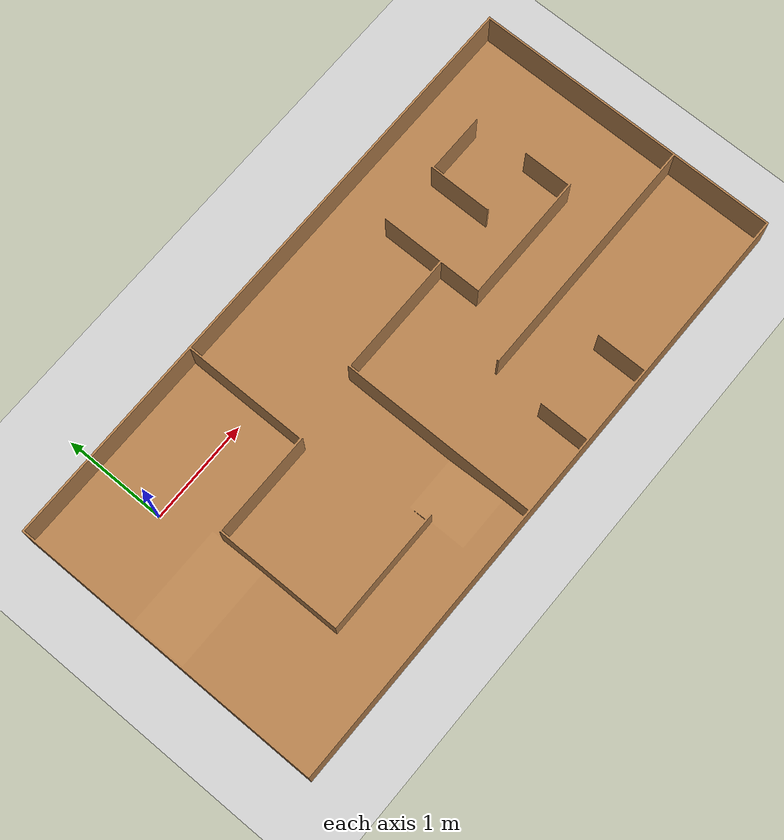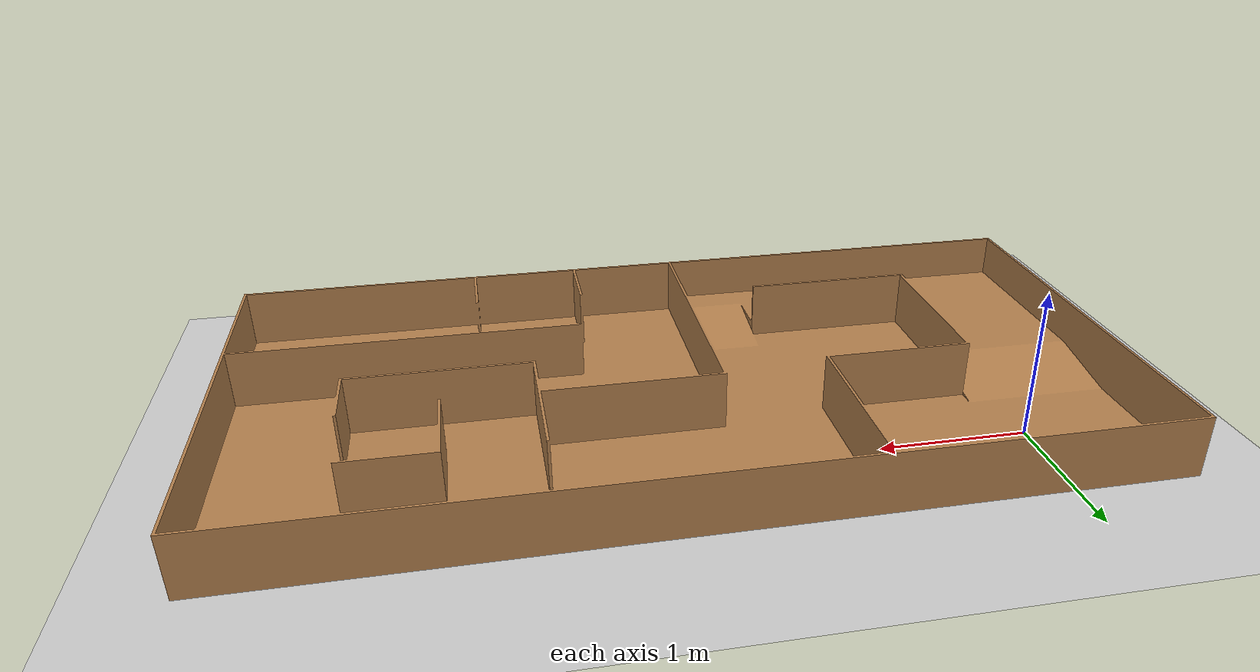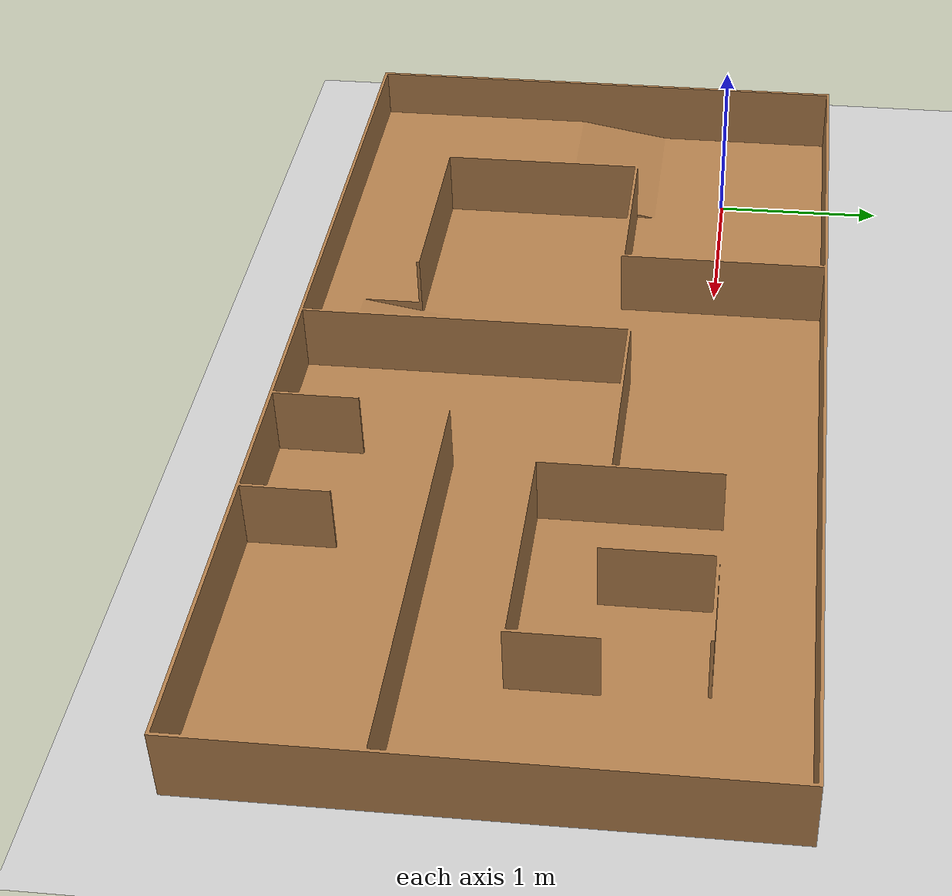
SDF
<sdf version="1.9">
 <world name="default">
  <gravity>0 0 -9.8</gravity>
  <magnetic_field>6e-06 2.3e-05 -4.2e-05</magnetic_field>
  <atmosphere type="adiabatic"/>
  <physics type="dart" name="dart">
   <max_step_size>0.001</max_step_size>
   <real_time_factor>1.0</real_time_factor>
   <real_time_update_rate>1000</real_time_update_rate>
  </physics>
  <scene><ambient>0.4 0.4 0.4 1</ambient><background>0.7 0.7 0.7 1</background><shadows>true</shadows></scene>
  <include><uri>model://ground_plane</uri></include>
  <model name="game_field">
   <static>true</static>
   <pose>2.5 -1.0 0 0 0 0</pose>
   <link name="link">
    <visual name="visual">
     <geometry><mesh><uri>model://gamefield/sdf/My_GF.dae</uri></mesh></geometry>
     <material>
      <script><uri>file://media/materials/scripts/gazebo.material</uri><name>Gazebo/Wood</name></script>
      <ambient>0.6 0.4 0.2 1</ambient>
      <diffuse>0.6 0.4 0.2 1</diffuse>
      <specular>0.1 0.1 0.1 1</specular>
     </material>
    </visual>
    <collision name="collision">
     <geometry><mesh><uri>model://gamefield/sdf/My_GF.dae</uri></mesh></geometry>
    </collision>
    <inertial>
     <mass>1</mass>
     <inertia><ixx>1</ixx><ixy>0</ixy><ixz>0</ixz><iyy>1</iyy><iyz>0</iyz><izz>1</izz></inertia>
    </inertial>
   </link>
  </model>
  <light name="directionallight" type="directional">
   <pose>-3.04524 -4.48386 2 0 0 0</pose>
   <intensity>1</intensity>
   <direction>0 0 -1</direction>
   <diffuse>0.8 0.8 0.8 1</diffuse>
   <specular>0.2 0.2 0.2 1</specular>
   <attenuation>
    <range>1000</range>
    <linear>0.01</linear>
    <constant>0.9</constant>
    <quadratic>0.001</quadratic>
   </attenuation>
   <spot><inner_angle>0</inner_angle><outer_angle>0</outer_angle><falloff>0</falloff></spot>
  </light>
  <plugin filename="gz-sim-physics-system" name="gz::sim::systems::Physics"/>
  <plugin filename="gz-sim-user-commands-system" name="gz::sim::systems::UserCommands"/>
  <plugin filename="gz-sim-scene-broadcaster-system" name="gz::sim::systems::SceneBroadcaster"/>
  <plugin filename="gz-sim-sensors-system" name="gz::sim::systems::Sensors">
   <render_engine>ogre2</render_engine>
  </plugin>
  <plugin filename="gz-sim-contact-system" name="gz::sim::systems::Contact"/>
  <plugin filename="libignition-gazebo-imu-system.so" name="ignition::gazebo::systems::Imu"/>
 </world>
</sdf>
